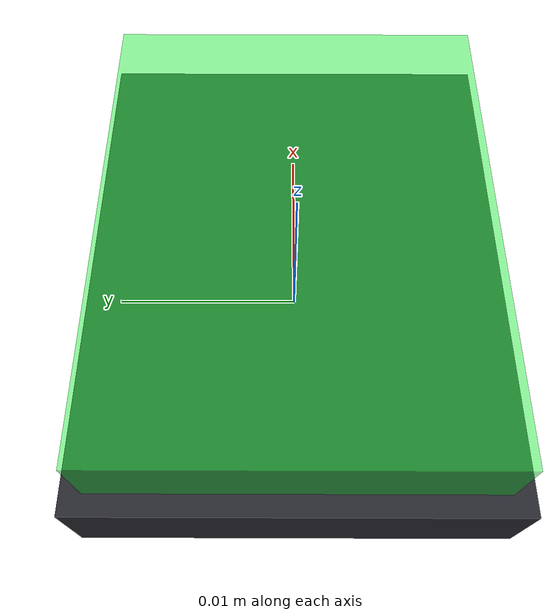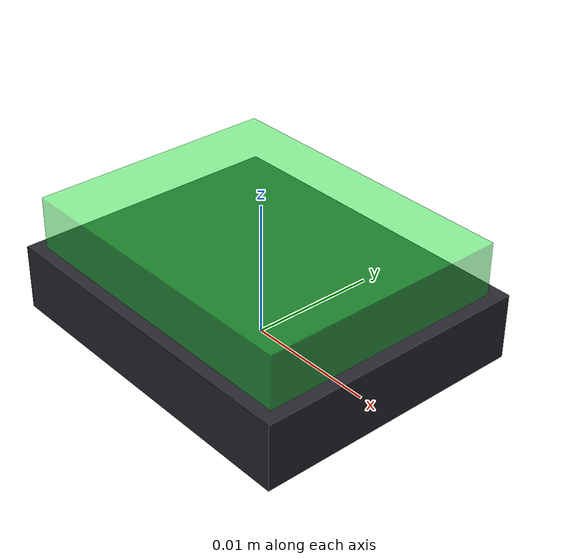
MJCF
<mujoco model="Switch_12">
  <asset>
    <material name="Switch_12_bezel" rgba="0.15 0.15 0.18 1"/>
    <material name="Switch_12_button" rgba="0.10 0.90 0.20 0.5"/>
  </asset>
  <worldbody>
    <body name="Switch_12">
      <geom name="Switch_12_bezel" type="box"
            pos="0 0 0.0025" size="0.013 0.0105 0.0025"
            material="Switch_12_bezel"/>
      <geom name="Switch_12_button" type="box"
            pos="0 0 0.0045" size="0.012 0.0095 0.0045"
            material="Switch_12_button"/>
    </body>
  </worldbody>
</mujoco>
